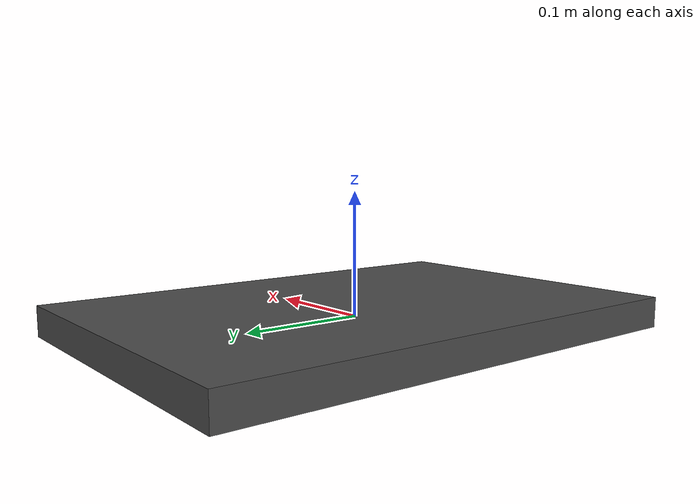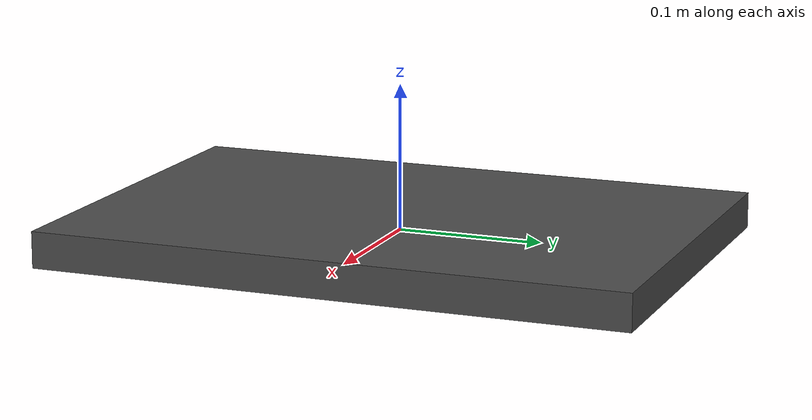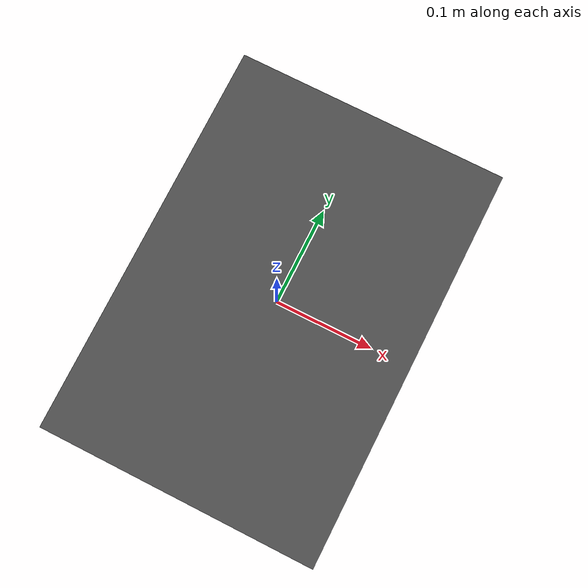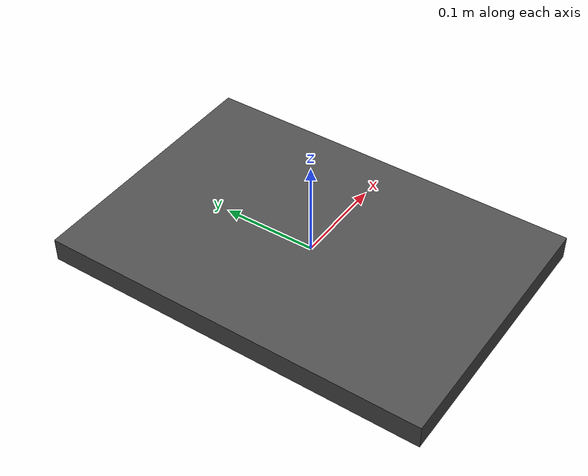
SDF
<?xml version='1.0'?>
<sdf version='1.6'>
  <model name='pad_bottom'>
    <link name='link'>
      <inertial>
        <mass>1</mass>
        <inertia>
          <ixx>0.01</ixx>
          <ixy>0</ixy>
          <ixz>0</ixz>
          <iyy>0.01</iyy>
          <iyz>0</iyz>
          <izz>0.01</izz>
        </inertia>
      </inertial>
      <velocity_decay>
        <linear>0</linear>
        <angular>0</angular>
      </velocity_decay>
      <self_collide>0</self_collide>
      <kinematic>0</kinematic>
      <gravity>1</gravity>
      <enable_wind>0</enable_wind>
      <pose frame=''>0 0 0 0 -0 0</pose>
      <visual name='stairs_visual0'>
        <pose frame=''>0 0 0 0 -0 0</pose>
        <geometry>
          <box>
            <size>0.28 0.41 0.025</size>
          </box>
        </geometry>
        <material>
          <script>
            <uri>file://media/materials/scripts/gazebo.material</uri>
            <name>Gazebo/DarkGray</name>
          </script>
          <shader type='pixel'/>
        </material>
        <transparency>0</transparency>
        <cast_shadows>1</cast_shadows>
      </visual>
      <collision name='stairs_collision0'>
        <laser_retro>0</laser_retro>
        <max_contacts>10</max_contacts>
        <pose frame=''>0 0 0 0 -0 0</pose>
        <geometry>
          <box>
            <size>0.28 0.41 0.025</size>
          </box>
        </geometry>
        <surface>
          <friction>
            <ode>
              <mu>10</mu>
              <mu2>10</mu2>
              <fdir1>0 0 0</fdir1>
              <slip1>0</slip1>
              <slip2>0</slip2>
            </ode>
            <torsional>
              <coefficient>1</coefficient>
              <patch_radius>0</patch_radius>
              <surface_radius>0</surface_radius>
              <use_patch_radius>1</use_patch_radius>
              <ode>
                <slip>0</slip>
              </ode>
            </torsional>
          </friction>
          <bounce>
            <restitution_coefficient>0</restitution_coefficient>
            <threshold>1e+06</threshold>
          </bounce>
          <contact>
            <collide_without_contact>0</collide_without_contact>
            <collide_without_contact_bitmask>1</collide_without_contact_bitmask>
            <collide_bitmask>1</collide_bitmask>
            <ode>
              <soft_cfm>0</soft_cfm>
              <soft_erp>0.2</soft_erp>
              <kp>1e+07</kp>
              <kd>1</kd>
              <max_vel>0</max_vel>
              <min_depth>0</min_depth>
            </ode>
            <bullet>
              <split_impulse>1</split_impulse>
              <split_impulse_penetration_threshold>-0.01</split_impulse_penetration_threshold>
              <soft_cfm>0</soft_cfm>
              <soft_erp>0.2</soft_erp>
              <kp>1e+07</kp>
              <kd>1</kd>
            </bullet>
          </contact>
        </surface>
      </collision>
    </link>
    <static>1</static>
    <allow_auto_disable>1</allow_auto_disable>
  </model>
</sdf>
